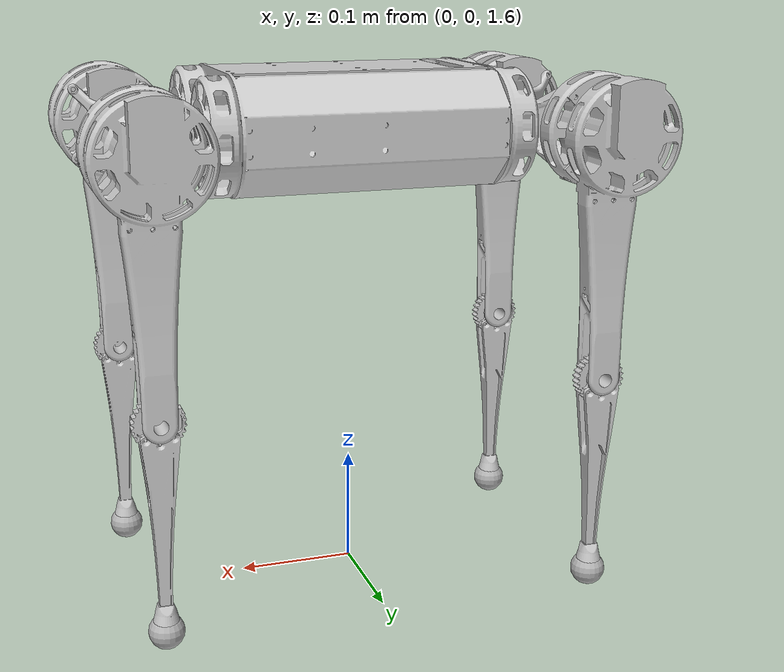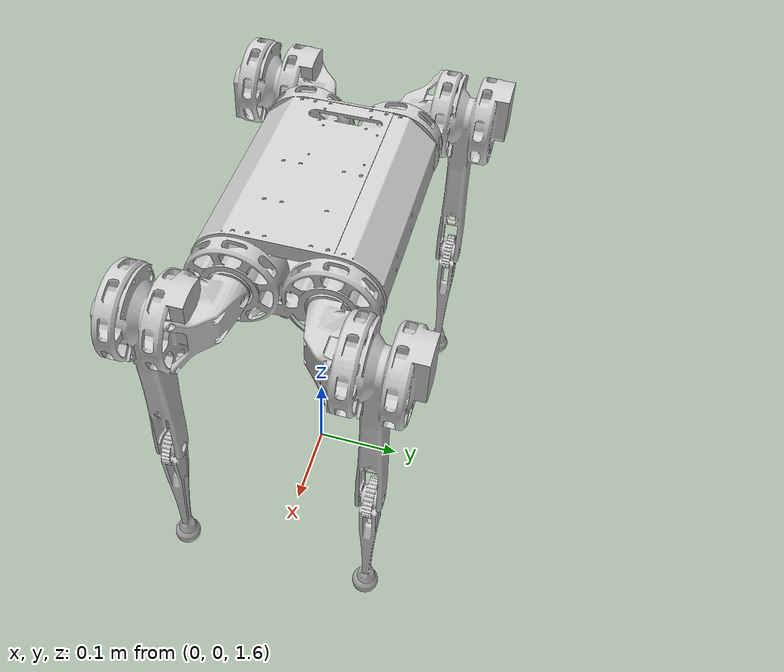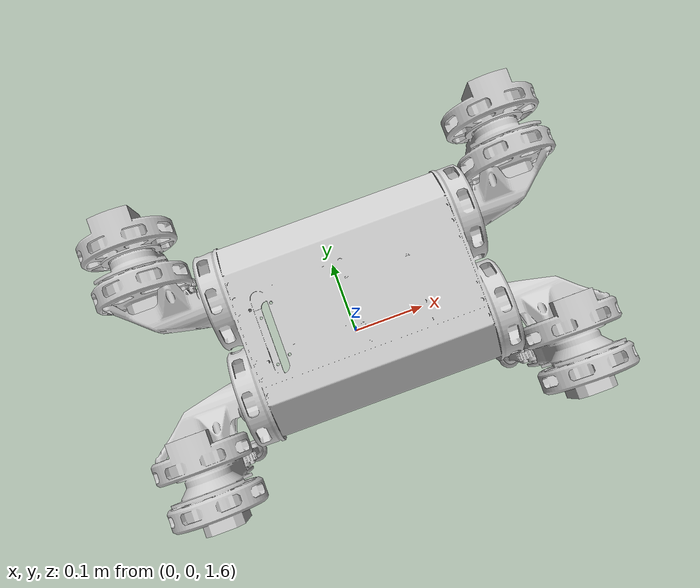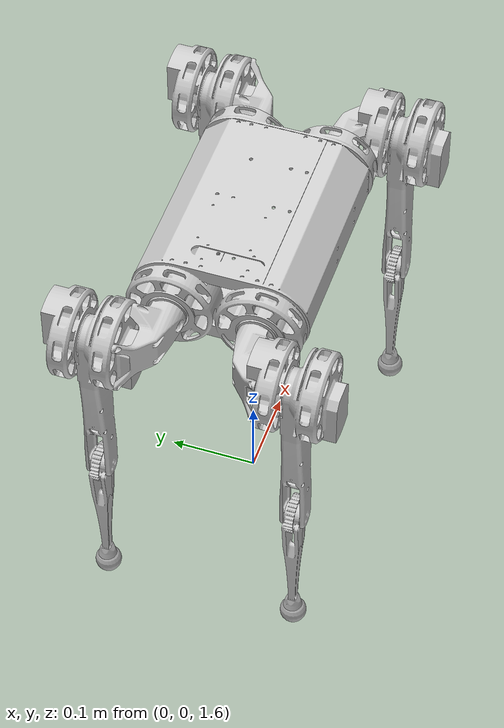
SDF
<?xml version="1.0" ?>
<sdf version="1.4">
  <!-- Definition of an empty world -->

  <world name="default_mini_cheetah">
    <include>
      <uri>model://ground_plane</uri>
    </include>

    <!-- Global light source -->
    <include>
      <uri>model://sun</uri>
    </include>

    <include>
      <uri>model://mini_cheetah</uri>
      <pose>0 0 2.0 0 0 0</pose>
    </include>

  </world>
</sdf>

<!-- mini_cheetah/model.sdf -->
<sdf version='1.7'>
  <model name='mini_cheetah'>
    <link name='body'>
      <inertial>
        <pose>0 0 0 0 -0 0</pose>
        <mass>3.3</mass>
        <inertia>
          <ixx>0.011253</ixx>
          <ixy>0</ixy>
          <ixz>0</ixz>
          <iyy>0.036203</iyy>
          <iyz>0</iyz>
          <izz>0.042673</izz>
        </inertia>
      </inertial>
      <collision name='body_collision'>
        <pose>0 0 0 0 -0 0</pose>
        <geometry>
          <mesh>
            <scale>1 1 1</scale>
            <uri>model://mini_cheetah/meshes/mini_body.dae</uri>
          </mesh>
        </geometry>
      </collision>
      <visual name='body_visual'>
        <pose>0 0 0 0 -0 0</pose>
        <geometry>
          <mesh>
            <scale>1 1 1</scale>
            <uri>model://mini_cheetah/meshes/mini_body.dae</uri>
          </mesh>
        </geometry>
      </visual>
    </link>
    <joint name='torso_to_abduct_fl_j' type='revolute'>
      <pose relative_to='body'>0.19 0.049 0 0 -0 0</pose>
      <parent>body</parent>
      <child>abduct_fl</child>
      <axis>
        <xyz>1 0 0</xyz>
        <limit>
          <lower>-1e+16</lower>
          <upper>1e+16</upper>
        </limit>
        <dynamics>
          <spring_reference>0</spring_reference>
          <spring_stiffness>0</spring_stiffness>
        </dynamics>
      </axis>
    </joint>
    <link name='abduct_fl'>
      <pose relative_to='torso_to_abduct_fl_j'>0 0 0 0 -0 0</pose>
      <inertial>
        <pose>0 0.036 0 0 -0 0</pose>
        <mass>0.54</mass>
        <inertia>
          <ixx>0.000381</ixx>
          <ixy>5.8e-05</ixy>
          <ixz>4.5e-07</ixz>
          <iyy>0.00056</iyy>
          <iyz>9.5e-07</iyz>
          <izz>0.000444</izz>
        </inertia>
      </inertial>
      <collision name='abduct_fl_collision'>
        <pose>-0.055 0 0 0 0 -1.5708</pose>
        <geometry>
          <mesh>
            <scale>1 1 1</scale>
            <uri>model://mini_cheetah/meshes/mini_abad.dae</uri>
          </mesh>
        </geometry>
      </collision>
      <visual name='abduct_fl_visual'>
        <pose>-0.055 0 0 0 0 -1.5708</pose>
        <geometry>
          <mesh>
            <scale>1 1 1</scale>
            <uri>model://mini_cheetah/meshes/mini_abad.dae</uri>
          </mesh>
        </geometry>
      </visual>
    </link>
    <joint name='abduct_fl_to_thigh_fl_j' type='revolute'>
      <pose relative_to='abduct_fl'>0 0.062 0 0 -0 0</pose>
      <parent>abduct_fl</parent>
      <child>thigh_fl</child>
      <axis>
        <xyz>0 -1 0</xyz>
        <limit>
          <lower>-1e+16</lower>
          <upper>1e+16</upper>
        </limit>
        <dynamics>
          <spring_reference>0</spring_reference>
          <spring_stiffness>0</spring_stiffness>
        </dynamics>
      </axis>
    </joint>
    <link name='thigh_fl'>
      <pose relative_to='abduct_fl_to_thigh_fl_j'>0 0 0 0 -0 0</pose>
      <inertial>
        <pose>0 0.016 -0.02 0 -0 0</pose>
        <mass>0.634</mass>
        <inertia>
          <ixx>0.001983</ixx>
          <ixy>0.000245</ixy>
          <ixz>1.3e-05</ixz>
          <iyy>0.002103</iyy>
          <iyz>1.5e-06</iyz>
          <izz>0.000408</izz>
        </inertia>
      </inertial>
      <collision name='thigh_fl_collision'>
        <pose>0 0 0 0 -1.5708 0</pose>
        <geometry>
          <mesh>
            <scale>1 1 1</scale>
            <uri>model://mini_cheetah/meshes/mini_upper_link.dae</uri>
          </mesh>
        </geometry>
      </collision>
      <visual name='thigh_fl_visual'>
        <pose>0 0 0 0 -1.5708 0</pose>
        <geometry>
          <mesh>
            <scale>1 1 1</scale>
            <uri>model://mini_cheetah/meshes/mini_upper_link.dae</uri>
          </mesh>
        </geometry>
      </visual>
    </link>
    <joint name='thigh_fl_to_knee_fl_j' type='revolute'>
      <pose relative_to='thigh_fl'>0 0 -0.209 0 -0 0</pose>
      <parent>thigh_fl</parent>
      <child>shank_fl</child>
      <axis>
        <xyz>0 -1 0</xyz>
        <limit>
          <lower>-1e+16</lower>
          <upper>1e+16</upper>
        </limit>
        <dynamics>
          <spring_reference>0</spring_reference>
          <spring_stiffness>0</spring_stiffness>
        </dynamics>
      </axis>
    </joint>
    <link name='shank_fl'>
      <pose relative_to='thigh_fl_to_knee_fl_j'>0 0 0 0 -0 0</pose>
      <inertial>
        <pose>0 0 -0.188673 0 -0 0</pose>
        <mass>0.214</mass>
        <inertia>
          <ixx>0.000307727</ixx>
          <ixy>0</ixy>
          <ixz>0</ixz>
          <iyy>0.000310727</iyy>
          <iyz>0</iyz>
          <izz>3.1e-05</izz>
        </inertia>
      </inertial>
      <collision name='shank_fl_collision'>
        <pose>0 0 0 3.14159 1e-06 3.14159</pose>
        <geometry>
          <mesh>
            <scale>1 1 1</scale>
            <uri>model://mini_cheetah/meshes/mini_lower_link.dae</uri>
          </mesh>
        </geometry>
      </collision>
      <collision name='shank_fl_fixed_joint_lump__toe_fl_collision_1'>
        <pose>0 0 -0.18 0 -0 0</pose>
        <geometry>
          <sphere>
            <radius>0.015</radius>
          </sphere>
        </geometry>
      </collision>
      <visual name='shank_fl_visual'>
        <pose>0 0 0 3.14159 1e-06 3.14159</pose>
        <geometry>
          <mesh>
            <scale>1 1 1</scale>
            <uri>model://mini_cheetah/meshes/mini_lower_link.dae</uri>
          </mesh>
        </geometry>
      </visual>
      <visual name='shank_fl_fixed_joint_lump__toe_fl_visual_1'>
        <pose>0 0 -0.18 0 -0 0</pose>
        <geometry>
          <sphere>
            <radius>0.015</radius>
          </sphere>
        </geometry>
      </visual>
    </link>
    <joint name='torso_to_abduct_fr_j' type='revolute'>
      <pose relative_to='body'>0.19 -0.049 0 0 -0 0</pose>
      <parent>body</parent>
      <child>abduct_fr</child>
      <axis>
        <xyz>1 0 0</xyz>
        <limit>
          <lower>-1e+16</lower>
          <upper>1e+16</upper>
        </limit>
        <dynamics>
          <spring_reference>0</spring_reference>
          <spring_stiffness>0</spring_stiffness>
        </dynamics>
      </axis>
    </joint>
    <link name='abduct_fr'>
      <pose relative_to='torso_to_abduct_fr_j'>0 0 0 0 -0 0</pose>
      <inertial>
        <pose>0 0.036 0 0 -0 0</pose>
        <mass>0.54</mass>
        <inertia>
          <ixx>0.000381</ixx>
          <ixy>5.8e-05</ixy>
          <ixz>4.5e-07</ixz>
          <iyy>0.00056</iyy>
          <iyz>9.5e-07</iyz>
          <izz>0.000444</izz>
        </inertia>
      </inertial>
      <collision name='abduct_fr_collision'>
        <pose>-0.055 0 0 3.14159 -0 1.5708</pose>
        <geometry>
          <mesh>
            <scale>1 1 1</scale>
            <uri>model://mini_cheetah/meshes/mini_abad.dae</uri>
          </mesh>
        </geometry>
      </collision>
      <visual name='abduct_fr_visual'>
        <pose>-0.055 0 0 3.14159 -0 1.5708</pose>
        <geometry>
          <mesh>
            <scale>1 1 1</scale>
            <uri>model://mini_cheetah/meshes/mini_abad.dae</uri>
          </mesh>
        </geometry>
      </visual>
    </link>
    <joint name='abduct_fr_to_thigh_fr_j' type='revolute'>
      <pose relative_to='abduct_fr'>0 -0.062 0 0 -0 0</pose>
      <parent>abduct_fr</parent>
      <child>thigh_fr</child>
      <axis>
        <xyz>0 -1 0</xyz>
        <limit>
          <lower>-1e+16</lower>
          <upper>1e+16</upper>
        </limit>
        <dynamics>
          <spring_reference>0</spring_reference>
          <spring_stiffness>0</spring_stiffness>
        </dynamics>
      </axis>
    </joint>
    <link name='thigh_fr'>
      <pose relative_to='abduct_fr_to_thigh_fr_j'>0 0 0 0 -0 0</pose>
      <inertial>
        <pose>0 0.016 -0.02 0 -0 0</pose>
        <mass>0.634</mass>
        <inertia>
          <ixx>0.001983</ixx>
          <ixy>0.000245</ixy>
          <ixz>1.3e-05</ixz>
          <iyy>0.002103</iyy>
          <iyz>1.5e-06</iyz>
          <izz>0.000408</izz>
        </inertia>
      </inertial>
      <collision name='thigh_fr_collision'>
        <pose>0 0 0 0 -1.5708 0</pose>
        <geometry>
          <mesh>
            <scale>1 1 1</scale>
            <uri>model://mini_cheetah/meshes/mini_upper_link.dae</uri>
          </mesh>
        </geometry>
      </collision>
      <visual name='thigh_fr_visual'>
        <pose>0 0 0 0 -1.5708 0</pose>
        <geometry>
          <mesh>
            <scale>1 1 1</scale>
            <uri>model://mini_cheetah/meshes/mini_upper_link.dae</uri>
          </mesh>
        </geometry>
      </visual>
    </link>
    <joint name='thigh_fr_to_knee_fr_j' type='revolute'>
      <pose relative_to='thigh_fr'>0 0 -0.209 0 -0 0</pose>
      <parent>thigh_fr</parent>
      <child>shank_fr</child>
      <axis>
        <xyz>0 -1 0</xyz>
        <limit>
          <lower>-1e+16</lower>
          <upper>1e+16</upper>
        </limit>
        <dynamics>
          <spring_reference>0</spring_reference>
          <spring_stiffness>0</spring_stiffness>
        </dynamics>
      </axis>
    </joint>
    <link name='shank_fr'>
      <pose relative_to='thigh_fr_to_knee_fr_j'>0 0 0 0 -0 0</pose>
      <inertial>
        <pose>0 0 -0.188673 0 -0 0</pose>
        <mass>0.214</mass>
        <inertia>
          <ixx>0.000307727</ixx>
          <ixy>0</ixy>
          <ixz>0</ixz>
          <iyy>0.000310727</iyy>
          <iyz>0</iyz>
          <izz>3.1e-05</izz>
        </inertia>
      </inertial>
      <collision name='shank_fr_collision'>
        <pose>0 0 0 3.14159 1e-06 3.14159</pose>
        <geometry>
          <mesh>
            <scale>1 1 1</scale>
            <uri>model://mini_cheetah/meshes/mini_lower_link.dae</uri>
          </mesh>
        </geometry>
      </collision>
      <collision name='shank_fr_fixed_joint_lump__toe_fr_collision_1'>
        <pose>0 0 -0.18 0 -0 0</pose>
        <geometry>
          <sphere>
            <radius>0.015</radius>
          </sphere>
        </geometry>
      </collision>
      <visual name='shank_fr_visual'>
        <pose>0 0 0 3.14159 1e-06 3.14159</pose>
        <geometry>
          <mesh>
            <scale>1 1 1</scale>
            <uri>model://mini_cheetah/meshes/mini_lower_link.dae</uri>
          </mesh>
        </geometry>
      </visual>
      <visual name='shank_fr_fixed_joint_lump__toe_fr_visual_1'>
        <pose>0 0 -0.18 0 -0 0</pose>
        <geometry>
          <sphere>
            <radius>0.015</radius>
          </sphere>
        </geometry>
      </visual>
    </link>
    <joint name='torso_to_abduct_hl_j' type='revolute'>
      <pose relative_to='body'>-0.19 0.049 0 0 -0 0</pose>
      <parent>body</parent>
      <child>abduct_hl</child>
      <axis>
        <xyz>1 0 0</xyz>
        <limit>
          <lower>-1e+16</lower>
          <upper>1e+16</upper>
        </limit>
        <dynamics>
          <spring_reference>0</spring_reference>
          <spring_stiffness>0</spring_stiffness>
        </dynamics>
      </axis>
    </joint>
    <link name='abduct_hl'>
      <pose relative_to='torso_to_abduct_hl_j'>0 0 0 0 -0 0</pose>
      <inertial>
        <pose>0 0.036 0 0 -0 0</pose>
        <mass>0.54</mass>
        <inertia>
          <ixx>0.000381</ixx>
          <ixy>5.8e-05</ixy>
          <ixz>4.5e-07</ixz>
          <iyy>0.00056</iyy>
          <iyz>9.5e-07</iyz>
          <izz>0.000444</izz>
        </inertia>
      </inertial>
      <collision name='abduct_hl_collision'>
        <pose>0.055 0 0 3.14159 0 -1.5708</pose>
        <geometry>
          <mesh>
            <scale>1 1 1</scale>
            <uri>model://mini_cheetah/meshes/mini_abad.dae</uri>
          </mesh>
        </geometry>
      </collision>
      <visual name='abduct_hl_visual'>
        <pose>0.055 0 0 3.14159 0 -1.5708</pose>
        <geometry>
          <mesh>
            <scale>1 1 1</scale>
            <uri>model://mini_cheetah/meshes/mini_abad.dae</uri>
          </mesh>
        </geometry>
      </visual>
    </link>
    <joint name='abduct_hl_to_thigh_hl_j' type='revolute'>
      <pose relative_to='abduct_hl'>0 0.062 0 0 -0 0</pose>
      <parent>abduct_hl</parent>
      <child>thigh_hl</child>
      <axis>
        <xyz>0 -1 0</xyz>
        <limit>
          <lower>-1e+16</lower>
          <upper>1e+16</upper>
        </limit>
        <dynamics>
          <spring_reference>0</spring_reference>
          <spring_stiffness>0</spring_stiffness>
        </dynamics>
      </axis>
    </joint>
    <link name='thigh_hl'>
      <pose relative_to='abduct_hl_to_thigh_hl_j'>0 0 0 0 -0 0</pose>
      <inertial>
        <pose>0 0.016 -0.02 0 -0 0</pose>
        <mass>0.634</mass>
        <inertia>
          <ixx>0.001983</ixx>
          <ixy>0.000245</ixy>
          <ixz>1.3e-05</ixz>
          <iyy>0.002103</iyy>
          <iyz>1.5e-06</iyz>
          <izz>0.000408</izz>
        </inertia>
      </inertial>
      <collision name='thigh_hl_collision'>
        <pose>0 0 0 0 -1.5708 0</pose>
        <geometry>
          <mesh>
            <scale>1 1 1</scale>
            <uri>model://mini_cheetah/meshes/mini_upper_link.dae</uri>
          </mesh>
        </geometry>
      </collision>
      <visual name='thigh_hl_visual'>
        <pose>0 0 0 0 -1.5708 0</pose>
        <geometry>
          <mesh>
            <scale>1 1 1</scale>
            <uri>model://mini_cheetah/meshes/mini_upper_link.dae</uri>
          </mesh>
        </geometry>
      </visual>
    </link>
    <joint name='thigh_hl_to_knee_hl_j' type='revolute'>
      <pose relative_to='thigh_hl'>0 0 -0.209 0 -0 0</pose>
      <parent>thigh_hl</parent>
      <child>shank_hl</child>
      <axis>
        <xyz>0 -1 0</xyz>
        <limit>
          <lower>-1e+16</lower>
          <upper>1e+16</upper>
        </limit>
        <dynamics>
          <spring_reference>0</spring_reference>
          <spring_stiffness>0</spring_stiffness>
        </dynamics>
      </axis>
    </joint>
    <link name='shank_hl'>
      <pose relative_to='thigh_hl_to_knee_hl_j'>0 0 0 0 -0 0</pose>
      <inertial>
        <pose>0 0 -0.188673 0 -0 0</pose>
        <mass>0.214</mass>
        <inertia>
          <ixx>0.000307727</ixx>
          <ixy>0</ixy>
          <ixz>0</ixz>
          <iyy>0.000310727</iyy>
          <iyz>0</iyz>
          <izz>3.1e-05</izz>
        </inertia>
      </inertial>
      <collision name='shank_hl_collision'>
        <pose>0 0 0 3.14159 1e-06 3.14159</pose>
        <geometry>
          <mesh>
            <scale>1 1 1</scale>
            <uri>model://mini_cheetah/meshes/mini_lower_link.dae</uri>
          </mesh>
        </geometry>
      </collision>
      <collision name='shank_hl_fixed_joint_lump__toe_hl_collision_1'>
        <pose>0 0 -0.18 0 -0 0</pose>
        <geometry>
          <sphere>
            <radius>0.015</radius>
          </sphere>
        </geometry>
      </collision>
      <visual name='shank_hl_visual'>
        <pose>0 0 0 3.14159 1e-06 3.14159</pose>
        <geometry>
          <mesh>
            <scale>1 1 1</scale>
            <uri>model://mini_cheetah/meshes/mini_lower_link.dae</uri>
          </mesh>
        </geometry>
      </visual>
      <visual name='shank_hl_fixed_joint_lump__toe_hl_visual_1'>
        <pose>0 0 -0.18 0 -0 0</pose>
        <geometry>
          <sphere>
            <radius>0.015</radius>
          </sphere>
        </geometry>
      </visual>
    </link>
    <joint name='torso_to_abduct_hr_j' type='revolute'>
      <pose relative_to='body'>-0.19 -0.049 0 0 -0 0</pose>
      <parent>body</parent>
      <child>abduct_hr</child>
      <axis>
        <xyz>1 0 0</xyz>
        <limit>
          <lower>-1e+16</lower>
          <upper>1e+16</upper>
        </limit>
        <dynamics>
          <spring_reference>0</spring_reference>
          <spring_stiffness>0</spring_stiffness>
        </dynamics>
      </axis>
    </joint>
    <link name='abduct_hr'>
      <pose relative_to='torso_to_abduct_hr_j'>0 0 0 0 -0 0</pose>
      <inertial>
        <pose>0 0.036 0 0 -0 0</pose>
        <mass>0.54</mass>
        <inertia>
          <ixx>0.000381</ixx>
          <ixy>5.8e-05</ixy>
          <ixz>4.5e-07</ixz>
          <iyy>0.00056</iyy>
          <iyz>9.5e-07</iyz>
          <izz>0.000444</izz>
        </inertia>
      </inertial>
      <collision name='abduct_hr_collision'>
        <pose>0.055 0 0 0 -0 1.5708</pose>
        <geometry>
          <mesh>
            <scale>1 1 1</scale>
            <uri>model://mini_cheetah/meshes/mini_abad.dae</uri>
          </mesh>
        </geometry>
      </collision>
      <visual name='abduct_hr_visual'>
        <pose>0.055 0 0 0 -0 1.5708</pose>
        <geometry>
          <mesh>
            <scale>1 1 1</scale>
            <uri>model://mini_cheetah/meshes/mini_abad.dae</uri>
          </mesh>
        </geometry>
      </visual>
    </link>
    <joint name='abduct_hr_to_thigh_hr_j' type='revolute'>
      <pose relative_to='abduct_hr'>0 -0.062 0 0 -0 0</pose>
      <parent>abduct_hr</parent>
      <child>thigh_hr</child>
      <axis>
        <xyz>0 -1 0</xyz>
        <limit>
          <lower>-1e+16</lower>
          <upper>1e+16</upper>
        </limit>
        <dynamics>
          <spring_reference>0</spring_reference>
          <spring_stiffness>0</spring_stiffness>
        </dynamics>
      </axis>
    </joint>
    <link name='thigh_hr'>
      <pose relative_to='abduct_hr_to_thigh_hr_j'>0 0 0 0 -0 0</pose>
      <inertial>
        <pose>0 0.016 -0.02 0 -0 0</pose>
        <mass>0.634</mass>
        <inertia>
          <ixx>0.001983</ixx>
          <ixy>0.000245</ixy>
          <ixz>1.3e-05</ixz>
          <iyy>0.002103</iyy>
          <iyz>1.5e-06</iyz>
          <izz>0.000408</izz>
        </inertia>
      </inertial>
      <collision name='thigh_hr_collision'>
        <pose>0 0 0 0 -1.5708 0</pose>
        <geometry>
          <mesh>
            <scale>1 1 1</scale>
            <uri>model://mini_cheetah/meshes/mini_upper_link.dae</uri>
          </mesh>
        </geometry>
      </collision>
      <visual name='thigh_hr_visual'>
        <pose>0 0 0 0 -1.5708 0</pose>
        <geometry>
          <mesh>
            <scale>1 1 1</scale>
            <uri>model://mini_cheetah/meshes/mini_upper_link.dae</uri>
          </mesh>
        </geometry>
      </visual>
    </link>
    <joint name='thigh_hr_to_knee_hr_j' type='revolute'>
      <pose relative_to='thigh_hr'>0 0 -0.209 0 -0 0</pose>
      <parent>thigh_hr</parent>
      <child>shank_hr</child>
      <axis>
        <xyz>0 -1 0</xyz>
        <limit>
          <lower>-1e+16</lower>
          <upper>1e+16</upper>
        </limit>
        <dynamics>
          <spring_reference>0</spring_reference>
          <spring_stiffness>0</spring_stiffness>
        </dynamics>
      </axis>
    </joint>
    <link name='shank_hr'>
      <pose relative_to='thigh_hr_to_knee_hr_j'>0 0 0 0 -0 0</pose>
      <inertial>
        <pose>0 0 -0.188673 0 -0 0</pose>
        <mass>0.214</mass>
        <inertia>
          <ixx>0.000307727</ixx>
          <ixy>0</ixy>
          <ixz>0</ixz>
          <iyy>0.000310727</iyy>
          <iyz>0</iyz>
          <izz>3.1e-05</izz>
        </inertia>
      </inertial>
      <collision name='shank_hr_collision'>
        <pose>0 0 0 3.14159 1e-06 3.14159</pose>
        <geometry>
          <mesh>
            <scale>1 1 1</scale>
            <uri>model://mini_cheetah/meshes/mini_lower_link.dae</uri>
          </mesh>
        </geometry>
      </collision>
      <collision name='shank_hr_fixed_joint_lump__toe_hr_collision_1'>
        <pose>0 0 -0.18 0 -0 0</pose>
        <geometry>
          <sphere>
            <radius>0.015</radius>
          </sphere>
        </geometry>
      </collision>
      <visual name='shank_hr_visual'>
        <pose>0 0 0 3.14159 1e-06 3.14159</pose>
        <geometry>
          <mesh>
            <scale>1 1 1</scale>
            <uri>model://mini_cheetah/meshes/mini_lower_link.dae</uri>
          </mesh>
        </geometry>
      </visual>
      <visual name='shank_hr_fixed_joint_lump__toe_hr_visual_1'>
        <pose>0 0 -0.18 0 -0 0</pose>
        <geometry>
          <sphere>
            <radius>0.015</radius>
          </sphere>
        </geometry>
      </visual>
    </link>
  </model>
</sdf>
